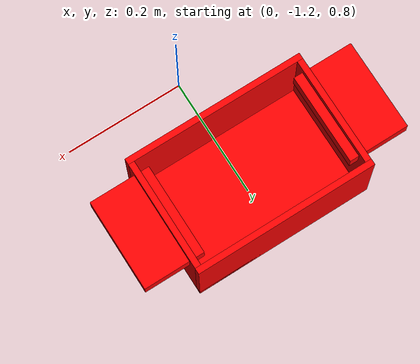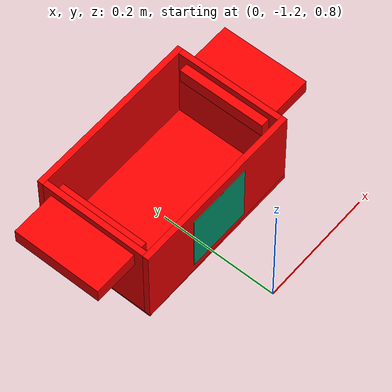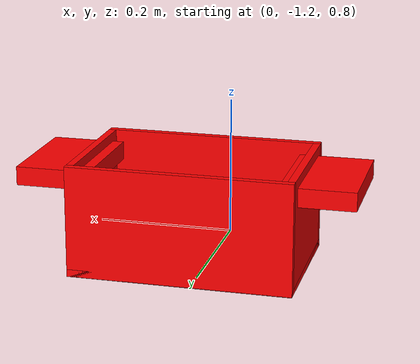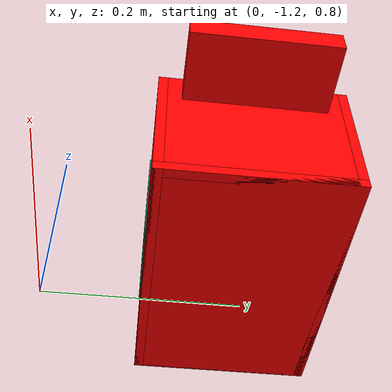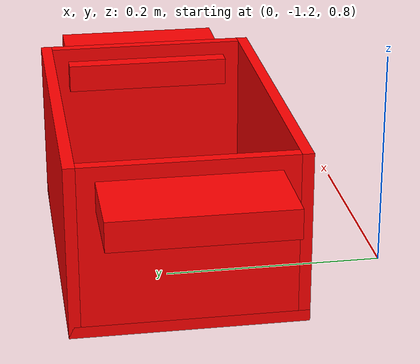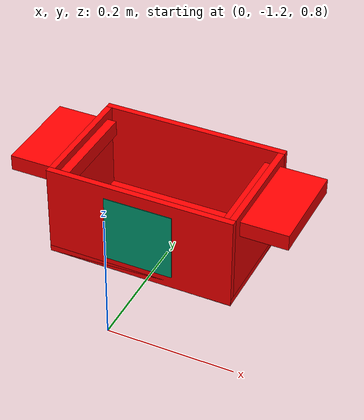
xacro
<?xml version="1.0"?>
<robot xmlns:xacro="http://ros.org/wiki/xacro" name="block">

  <!-- 引入apriltag宏 -->
  <xacro:include filename="$(find kuavo_assets)/models/apriltag/urdf/apriltag.xacro"/>

  <link name="world"/>

  <link name="base_link">
    <!-- 中空收纳盒参数: 外尺寸 0.3x0.2x0.15m, 壁厚 0.01m -->

    <!-- 底板 -->
    <visual>
      <geometry>
        <box size="0.3 0.2 0.01"/>
      </geometry>
      <origin xyz="0 0 -0.07" rpy="0 0 0"/>
      <material name="red">
        <color rgba="1 0 0 1"/>
      </material>
    </visual>
    <collision>
      <geometry>
        <box size="0.3 0.2 0.01"/>
      </geometry>
      <origin xyz="0 0 -0.07" rpy="0 0 0"/>
    </collision>

    <!-- 前墙 (y负方向) -->
    <visual>
      <geometry>
        <box size="0.3 0.01 0.15"/>
      </geometry>
      <origin xyz="0 -0.095 0" rpy="0 0 0"/>
      <material name="red"/>
    </visual>
    <collision>
      <geometry>
        <box size="0.3 0.01 0.15"/>
      </geometry>
      <origin xyz="0 -0.095 0" rpy="0 0 0"/>
    </collision>

    <!-- 后墙 (y正方向) -->
    <visual>
      <geometry>
        <box size="0.3 0.01 0.15"/>
      </geometry>
      <origin xyz="0 0.095 0" rpy="0 0 0"/>
      <material name="red"/>
    </visual>
    <collision>
      <geometry>
        <box size="0.3 0.01 0.15"/>
      </geometry>
      <origin xyz="0 0.095 0" rpy="0 0 0"/>
    </collision>

    <!-- 左墙 (x负方向) -->
    <visual>
      <geometry>
        <box size="0.01 0.18 0.15"/>
      </geometry>
      <origin xyz="-0.145 0 0" rpy="0 0 0"/>
      <material name="red"/>
    </visual>
    <collision>
      <geometry>
        <box size="0.01 0.18 0.15"/>
      </geometry>
      <origin xyz="-0.145 0 0" rpy="0 0 0"/>
    </collision>

    <!-- 右墙 (x正方向) -->
    <visual>
      <geometry>
        <box size="0.01 0.18 0.15"/>
      </geometry>
      <origin xyz="0.145 0 0" rpy="0 0 0"/>
      <material name="red"/>
    </visual>
    <collision>
      <geometry>
        <box size="0.01 0.18 0.15"/>
      </geometry>
      <origin xyz="0.145 0 0" rpy="0 0 0"/>
    </collision>

    <!-- 左耳 (保留原有设计) -->
    <visual>
      <geometry>
        <box size="0.1 0.15 0.025"/>
      </geometry>
      <origin xyz="-0.175 0.0 0.05" rpy="0 0 0"/>
      <material name="red"/>
    </visual>
    <collision>
      <geometry>
        <box size="0.1 0.15 0.025"/>
      </geometry>
      <origin xyz="-0.175 0.0 0.05" rpy="0 0 0"/>
    </collision>

    <!-- 右耳 (保留原有设计) -->
    <visual>
      <geometry>
        <box size="0.1 0.15 0.025"/>
      </geometry>
      <origin xyz="0.175 0.0 0.05" rpy="0 0 0"/>
      <material name="red"/>
    </visual>
    <collision>
      <geometry>
        <box size="0.1 0.15 0.025"/>
      </geometry>
      <origin xyz="0.175 0.0 0.05" rpy="0 0 0"/>
    </collision>

    <!-- 质量惯性 -->
    <inertial>
      <mass value="0.5"/>
      <inertia ixx="0.0025" ixy="0" ixz="0" iyy="0.0025" iyz="0" izz="0.0025"/>
    </inertial>
  </link>

  <!-- Floating joint to make the block freely movable -->
  <joint name="floating" type="floating">
    <parent link="world"/>
    <child link="base_link"/>
    <origin xyz="0 -1.0 0.9" rpy="0 0 0"/>
  </joint>

  <!-- Gazebo物理参数：增加摩擦力防止滑落 -->
  <gazebo reference="base_link">
    <mu1>1.5</mu1>
    <mu2>1.5</mu2>
    <kp>1000000.0</kp>
    <kd>100.0</kd>
    <minDepth>0.001</minDepth>
    <maxVel>0.1</maxVel>
  </gazebo>

  <!-- 在Block前面(Y负方向)贴上AprilTag ID=0 -->
  <!-- 二维码贴在前墙外表面，面向Y负方向 -->
  <!-- rpy: roll=0, pitch=90°(绕X轴立起来), yaw=180°(面向Y负方向) -->
  <xacro:apriltag_marker parent_link="base_link" id="0">
    <origin xyz="0 -0.101 0" rpy="1.5708 0 3.14159"/>
  </xacro:apriltag_marker>

</robot>

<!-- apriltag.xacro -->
<robot xmlns:xacro="http://ros.org/wiki/xacro" name="apriltag_marker">

  <xacro:macro name="apriltag_marker" params="parent_link *origin id">
    <!-- 定义二维码的Link -->
    <link name="apriltag_marker_${id}">
      <visual>
        <origin xyz="0 0 0" rpy="0 0 0"/>
        <geometry>
          <box size="0.11 0.11 0.001"/>
        </geometry>
      </visual>
      <collision>
        <geometry>
          <box size="0.11 0.11 0.001"/>
        </geometry>
      </collision>
    </link>

    <joint name="apriltag_joint_${id}" type="fixed">
      <xacro:insert_block name="origin" />
      <parent link="${parent_link}"/>
      <child link="apriltag_marker_${id}"/>
    </joint>

    <gazebo reference="apriltag_marker_${id}">
      <visual>
        <material>
          <script>
            <uri>file://$(find kuavo_assets)/models/apriltag/materials/apriltag_${id}.material</uri>
            <name>AprilTag/Marker${id}</name>
          </script>
          <shader type="pixel">
            <normal_map>__default__</normal_map>
          </shader>
          <double_sided>false</double_sided>
        </material>
      </visual>
    </gazebo>
  </xacro:macro>
</robot>
